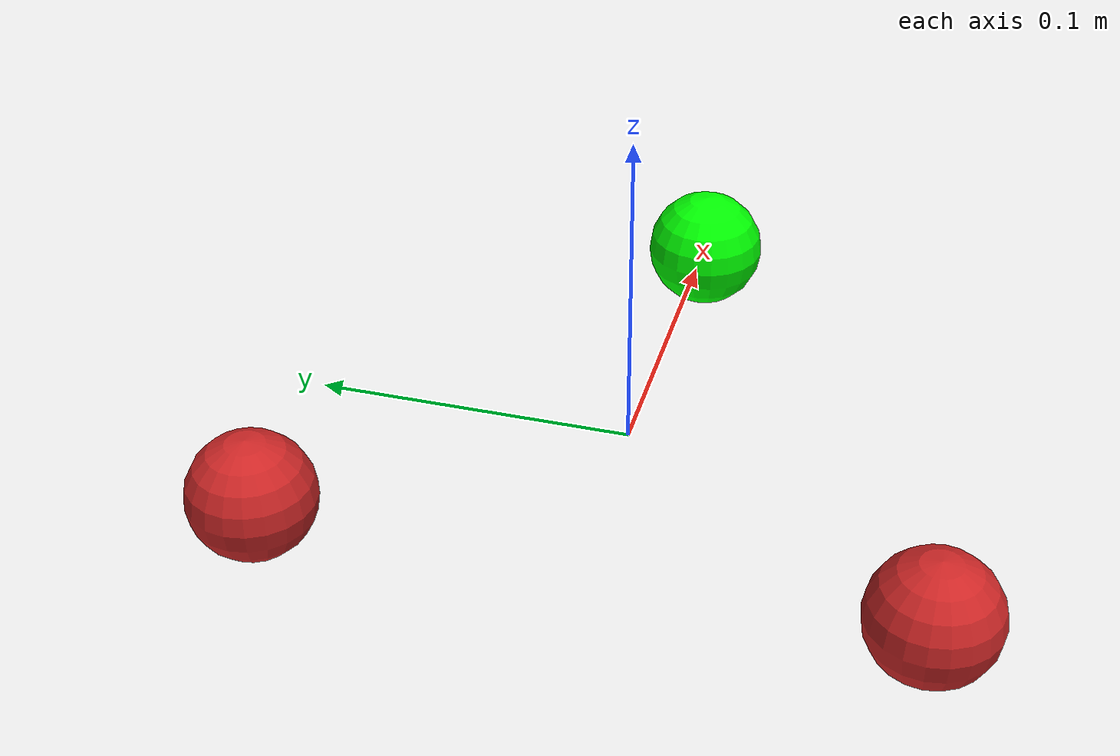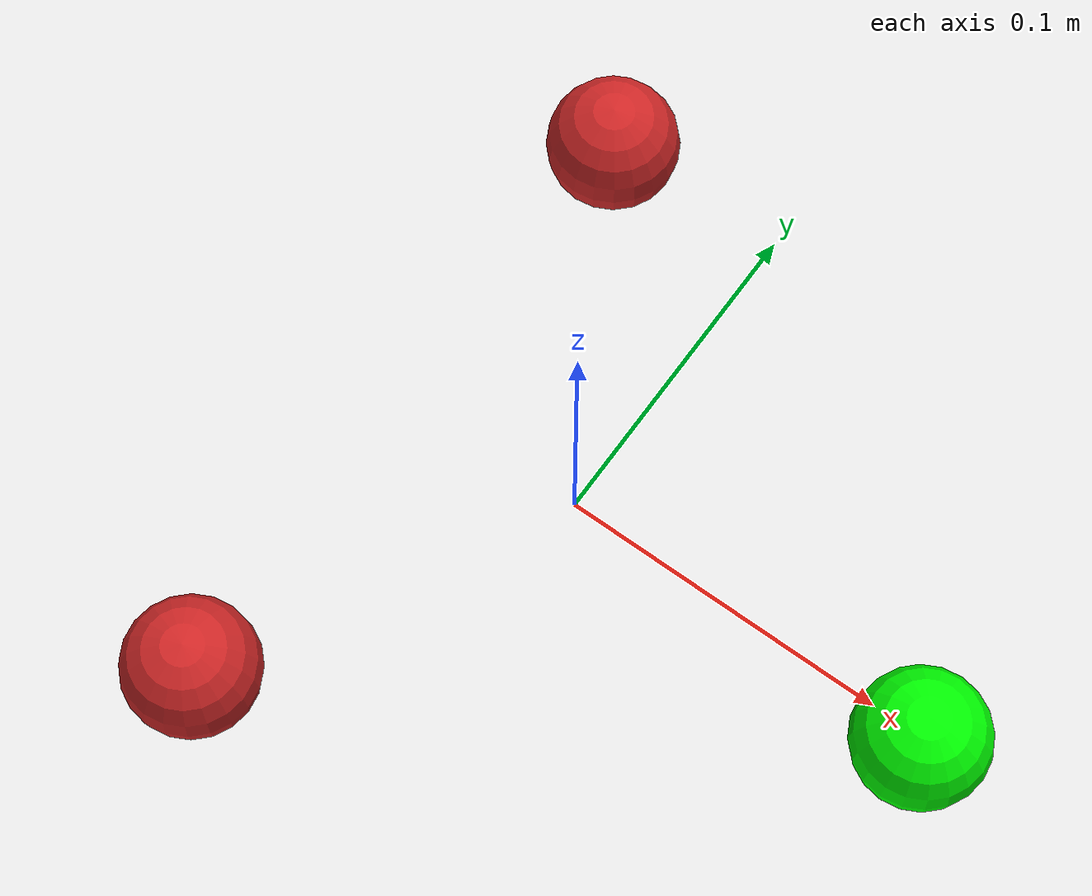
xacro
<?xml version="1.0" encoding="utf-8"?>
<robot name="end_effector_fingers">

  <!-- Custom tool for tray balancing -->
  <!-- When oriented forward, the frame has: z forward, x down, y left -->
  <!-- When oriented up (i.e. for balancing): z up, x forward, y left -->
  <link name="gripped_object">
    <visual>
      <origin rpy="0 0 0" xyz="0.1155 0 0"/>
      <geometry>
        <sphere radius="0.02"/>
      </geometry>
      <material name="green">
        <color rgba="0 1 0 1"/>
      </material>
    </visual>

    <visual>
      <origin rpy="0 0 0" xyz="-0.0577 0.1 0"/>
      <geometry>
        <sphere radius="0.02"/>
      </geometry>
      <material name="red"/>
    </visual>

    <visual>
      <origin rpy="0 0 0" xyz="-0.0577 -0.1 0"/>
      <geometry>
        <sphere radius="0.02"/>
      </geometry>
      <material name="red"/>
    </visual>

    <collision>
      <origin rpy="0 0 0" xyz="0.1155 0 0"/>
      <geometry>
        <sphere radius="0.02"/>
      </geometry>
    </collision>

    <collision>
      <origin rpy="0 0 0" xyz="-0.0577 0.1 0"/>
      <geometry>
        <sphere radius="0.02"/>
      </geometry>
    </collision>

    <collision>
      <origin rpy="0 0 0" xyz="-0.0577 -0.1 0"/>
      <geometry>
        <sphere radius="0.02"/>
      </geometry>
    </collision>

    <inertial>
      <origin rpy="0 0 0" xyz="0 0 0"/>
      <mass value="0.1"/>
      <!-- not accurate, but pybullet recomputes this by default -->
      <inertia ixx="1" ixy="0" ixz="0" iyy="1" iyz="0" izz="1"/>
    </inertial>
  </link>
</robot>
